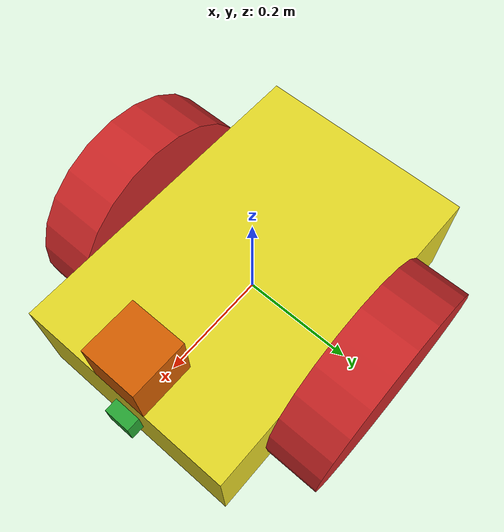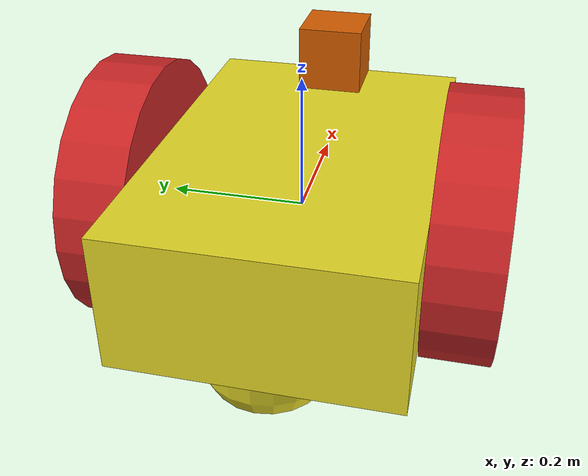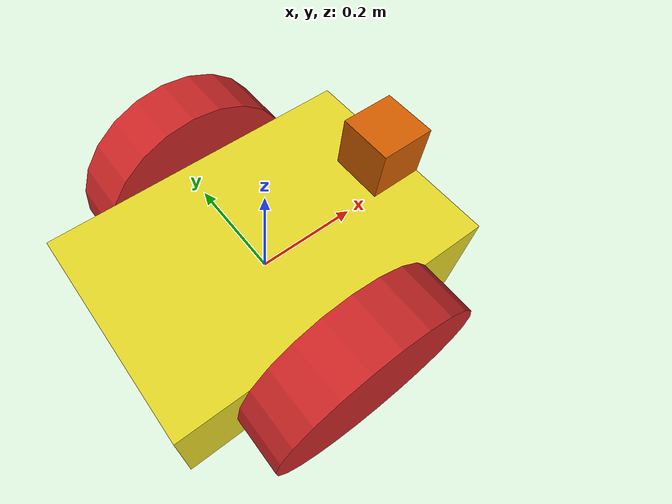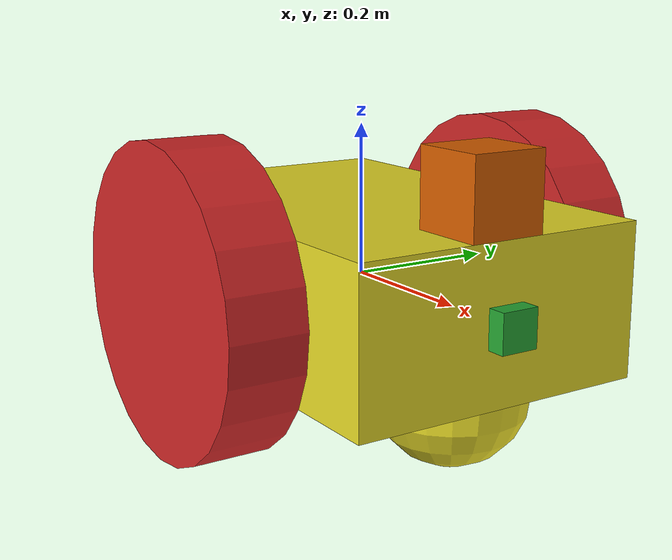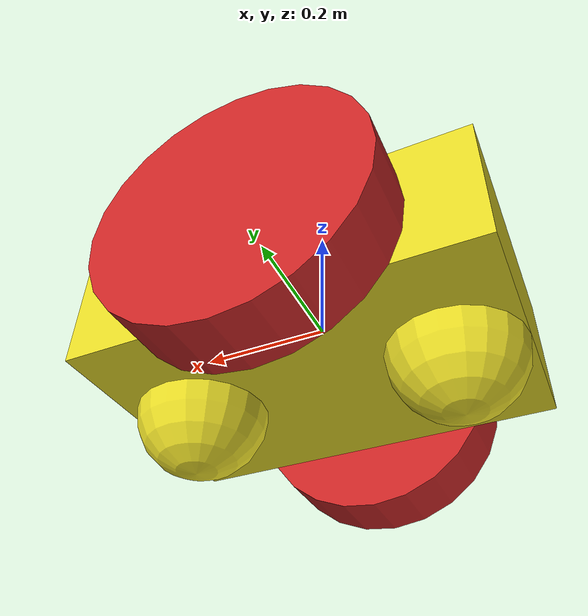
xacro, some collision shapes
<?xml version='1.0'?>

<robot name="my_robot" xmlns:xacro="http://www.ros.org/wiki/xacro">

  <xacro:include filename="$(find my_robot)/urdf/my_robot.gazebo" />

  <link name="robot_footprint"></link>

  <joint name="robot_footprint_joint" type="fixed">
    <origin xyz="0 0 0" rpy="0 0 0" />
    <parent link="robot_footprint"/>
    <child link="chassis" />
  </joint>

  <link name='chassis'>
    <pose>0 0 0.1 0 0 0</pose>

    <inertial>
      <mass value="15.0"/>
      <origin xyz="0.0 0 0" rpy=" 0 0 0"/>
      <inertia
          ixx="0.1" ixy="0" ixz="0"
          iyy="0.1" iyz="0"
          izz="0.1"
      />
    </inertial>

    <collision name='collision'>
      <origin xyz="0 0 0" rpy=" 0 0 0"/>
      <geometry>
        <box size=".6 .4 .2"/>
      </geometry>
    </collision>

    <visual name='chassis_visual'>
      <origin xyz="0 0 0" rpy=" 0 0 0"/>
      <geometry>
        <box size=".6 .4 .2"/>
      </geometry>
    </visual>

    <collision name='back_caster_collision'>
      <origin xyz="-0.2 0 -0.1" rpy=" 0 0 0"/>
      <geometry>
        <sphere radius="0.099"/>
      </geometry>
    </collision>

    <visual name='back_caster_visual'>
      <origin xyz="-0.2 0 -0.1" rpy=" 0 0 0"/>
      <geometry>
        <sphere radius="0.1"/>
      </geometry>
    </visual>

    <collision name='front_caster_collision'>
      <origin xyz="0.2 0 -0.1" rpy=" 0 0 0"/>
      <geometry>
        <sphere radius="0.099"/>
      </geometry>
    </collision>

    <visual name='front_caster_visual'>
      <origin xyz="0.2 0 -0.1" rpy=" 0 0 0"/>
      <geometry>
        <sphere radius="0.1"/>
      </geometry>
    </visual>
  </link>

 <link name="left_wheel">

    <inertial>
      <mass value="5.0" />
      <origin xyz="0 0 0" rpy="0 1.5707 1.5707" />
      <inertia
        ixx="0.1" ixy="0" ixz="0"
        iyy="0.1" iyz="0"
        izz="0.1"
      />
    </inertial>

    <collision>
      <origin xyz="0 0 0" rpy="0 1.5707 1.5707" />
      <geometry>
        <cylinder radius="0.2" length="0.1" />
      </geometry>
    </collision>

    <visual>
      <origin xyz="0 0 0" rpy="0 1.5707 1.5707" />
      <geometry>
        <cylinder radius="0.2" length="0.1" />
      </geometry>
    </visual>

  </link>

  <link name="right_wheel">

    <inertial>
      <mass value="5.0" />
      <origin xyz="0 0 0" rpy="0 1.5707 1.5707" />
      <inertia
        ixx="0.1" ixy="0" ixz="0"
        iyy="0.1" iyz="0"
        izz="0.1"
      />
    </inertial>

    <collision>
      <origin xyz="0 0 0" rpy="0 1.5707 1.5707" />
      <geometry>
        <cylinder radius="0.2" length="0.1" />
      </geometry>
    </collision>

    <visual>
      <origin xyz="0 0 0" rpy="0 1.5707 1.5707" />
      <geometry>
        <cylinder radius="0.2" length="0.1" />
      </geometry>
    </visual>

  </link>

  <joint type="continuous" name="left_wheel_hinge">
    <origin xyz="0 0.25 0" rpy="0 0 0" />
    <child link="left_wheel" />
    <parent link="chassis" />
    <axis xyz="0 1 0" rpy="0 0 0" />
    <limit effort="10000" velocity="1000" />
    <dynamics damping="1.0" friction="1.0" />
  </joint>

  <joint type="continuous" name="right_wheel_hinge">
    <origin xyz="0 -0.25 0" rpy="0 0 0" />
    <child link="right_wheel" />
    <parent link="chassis" />
    <axis xyz="0 1 0" rpy="0 0 0" />
    <limit effort="10000" velocity="1000" />
    <dynamics damping="1.0" friction="1.0" />
  </joint>

  <link name="camera">

    <box_inertia m="0.1" x="0.05" y="0.05" z="0.05"/>

    <visual>
      <origin xyz="0 0 0" rpy=" 0 0 0"/>
      <geometry>
        <box size="0.05 0.05 0.05"/>
      </geometry>
    </visual>

    <collision>
      <origin xyz="0 0 0" rpy=" 0 0 0"/>
      <geometry>
        <box size="0.05 0.05 0.05"/>
      </geometry>
    </collision>

  </link>

  <joint type="fixed" name="camera_joint">
    <axis xyz="0 1 0"/>
    <origin xyz="0.3 0 0" rpy="0 0 0"/>
    <child link="camera"/>
    <parent link="chassis"/>
  </joint>

  <link name="hokuyo">
    <inertial>
      <origin xyz="0 0 0" rpy="0 0 0"/>
      <mass value="1e-5"/>
      <inertia
        ixx="1e-6" ixy="0" ixz="0"
        iyy="1e-6" iyz="0"
        izz="1e-6"
      />
    </inertial>

    <visual>
      <origin xyz="0 0 0" rpy=" 0 0 0"/>
      <geometry>
        <mesh filename="package://my_robot/meshes/hokuyo.dae"/>
      </geometry>
    </visual>

    <collision>
      <origin xyz="0 0 0" rpy=" 0 0 0"/>
      <geometry>
        <box size="0.1 0.1 0.1"/>
      </geometry>
    </collision>

  </link>

  <joint type="fixed" name="hokuyo_joint">
    <origin xyz="0.25 0 0.15" rpy="0 0 0"/>
    <axis xyz="0 1 0"/>
    <parent link="chassis"/>
    <child link="hokuyo"/>
  </joint>

  <gazebo reference="left_wheel">
      <material>Gazebo/Red</material>
  </gazebo>

  <gazebo reference="right_wheel">
      <material>Gazebo/Red</material>
  </gazebo>

  <gazebo reference="chassis">
      <material>Gazebo/Yellow</material>
  </gazebo>

  <gazebo reference="camera">
      <material>Gazebo/Green</material>
  </gazebo>

</robot>
